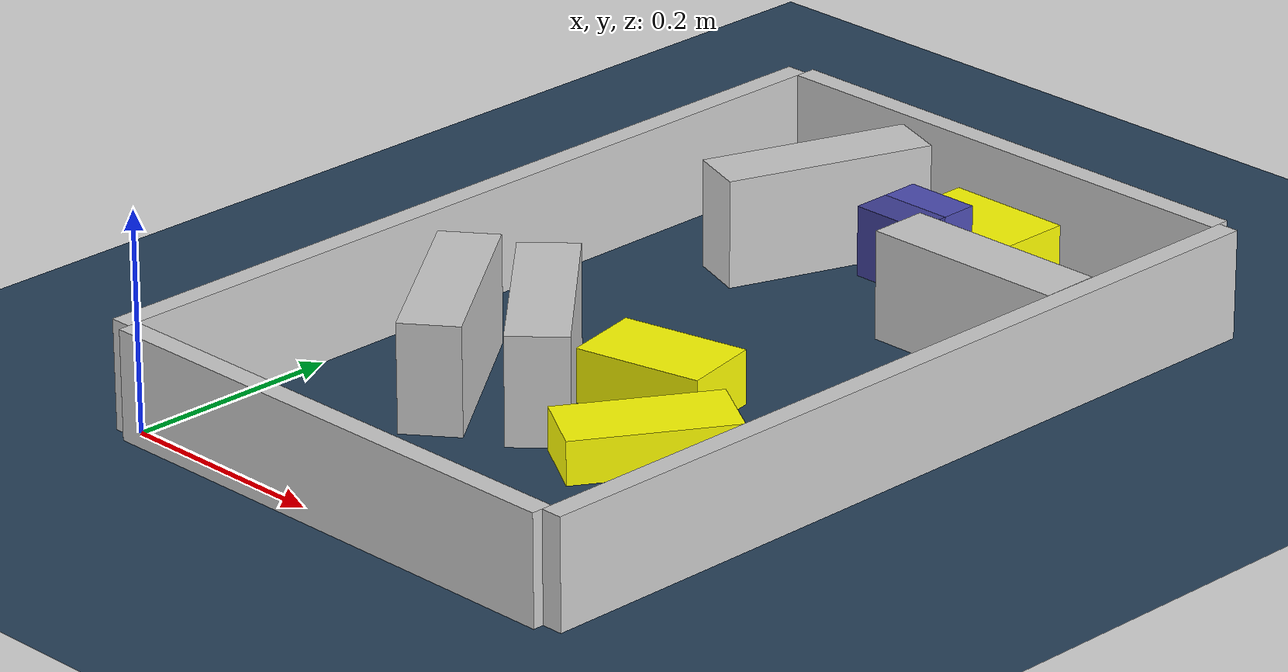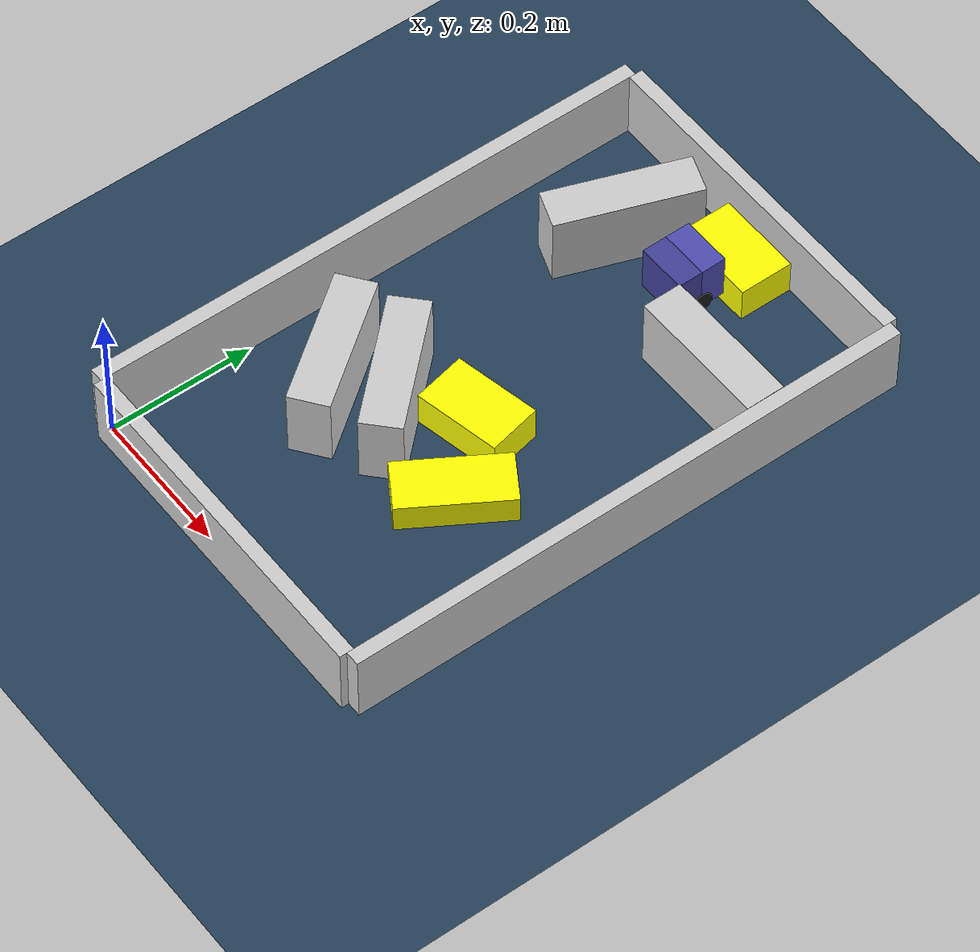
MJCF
<?xml version='1.0' encoding='utf-8'?>
<mujoco model="real_buildable">
  <compiler angle="degree" />
  <option timestep="0.002" integrator="implicitfast" iterations="100" cone="elliptic" />
  <default>
    <geom density="1" />
  </default>
  <asset>
    <texture builtin="gradient" height="3072" rgb1="0.3 0.5 0.7" rgb2="0 0 0" type="skybox" width="512" />
    <texture builtin="checker" height="300" mark="edge" markrgb="0.8 0.8 0.8" name="groundplane" rgb1="0.2 0.3 0.4" rgb2="0.1 0.2 0.3" type="2d" width="300" />
    <material name="groundplane" reflectance="0.2" texrepeat="5 5" texture="groundplane" texuniform="true" />
  </asset>
  <worldbody>
    <light dir="0 0 -1" directional="true" pos="0 0 1.5" />
    <geom name="floor" type="plane" condim="4" friction="0.5 0.005 0.001" material="groundplane" size="0 0 0.05" />
    <body name="walls">
      <geom name="wall_boundary_left" type="box" condim="4" friction="1.0 0.005 0.0001" rgba="0.8 0.8 0.8 1" pos="-0.010000 0.387500 0.050000" euler="0 0 0.000000" size="0.010000 0.397500 0.050000" />
      <geom name="wall_boundary_right" type="box" condim="4" friction="1.0 0.005 0.0001" rgba="0.8 0.8 0.8 1" pos="0.500000 0.387500 0.050000" euler="0 0 0.000000" size="0.010000 0.397500 0.050000" />
      <geom name="wall_boundary_bottom" type="box" condim="4" friction="1.0 0.005 0.0001" rgba="0.8 0.8 0.8 1" pos="0.245000 -0.010000 0.050000" euler="0 0 0.000000" size="0.245000 0.010000 0.050000" />
      <geom name="wall_boundary_top" type="box" condim="4" friction="1.0 0.005 0.0001" rgba="0.8 0.8 0.8 1" pos="0.245000 0.785000 0.050000" euler="0 0 0.000000" size="0.245000 0.010000 0.050000" />
      <geom name="wall_inner_1" type="box" condim="4" friction="1.0 0.005 0.0001" rgba="0.8 0.8 0.8 1" pos="0.184717 0.282959 0.050000" euler="0 0 -46.629142" size="0.097500 0.027500 0.050000" />
      <geom name="wall_inner_2" type="box" condim="4" friction="1.0 0.005 0.0001" rgba="0.8 0.8 0.8 1" pos="0.113388 0.243286 0.050000" euler="0 0 -53.073195" size="0.097500 0.027500 0.050000" />
      <geom name="wall_inner_3" type="box" condim="4" friction="1.0 0.005 0.0001" rgba="0.8 0.8 0.8 1" pos="0.392000 0.596000 0.050000" euler="0 0 0.500000" size="0.097500 0.027500 0.050000" />
      <geom name="wall_inner_4" type="box" condim="4" friction="1.0 0.005 0.0001" rgba="0.8 0.8 0.8 1" pos="0.139000 0.657000 0.050000" euler="0 0 70.200000" size="0.097500 0.027500 0.050000" />
    </body>
    <body name="car" pos="0.24881501365435704 0.6651053807177395 0.01" quat="0.70399338191675154 0 0 0.71020653208585371">
      <freejoint name="car_freejoint" />
      <inertial pos="0 0 0.0375" mass="0.35" diaginertia="0.000266 0.000266 0.000286" />
      <geom name="front_chassis_collision" type="box" pos="0.0175 0 0.0375" size="0.0175 0.035 0.0325" rgba="0.3 0.3 0.7 1" />
      <geom name="rear_chassis_collision" type="box" pos="-0.0175 0 0.0375" size="0.0175 0.035 0.0325" rgba="0.25 0.25 0.6 1" />
      <geom name="front_marker" type="box" pos="0.034 0 0.0505" size="0.002 0.015 0.01" rgba="1 0.2 0.2 1" contype="0" conaffinity="0" />
      <body name="rear_support_body" pos="-0.03 0 0.0025">
        <joint name="rear_caster_joint" type="ball" damping="0.0001" />
        <inertial pos="0 0 0" mass="0.025" diaginertia="0.000001 0.000001 0.000001" />
        <geom name="rear_support" type="sphere" pos="0 0 0" size="0.0025" friction="0 0 0" rgba="0.7 0.1 0.1 1" />
      </body>
      <body name="front_support_body" pos="0.03 0 0.0025">
        <joint name="front_caster_joint" type="ball" damping="0.0001" />
        <inertial pos="0 0 0" mass="0.025" diaginertia="0.000001 0.000001 0.000001" />
        <geom name="front_support" type="sphere" pos="0 0 0" size="0.0025" friction="0 0 0" rgba="0.1 0.7 0.1 1" />
      </body>
      <body name="left_wheel" pos="0 0.0375 0.015">
        <inertial pos="0 0 0" mass="0.05" diaginertia="0.000003 0.000006 0.000003" />
        <joint name="left_wheel_joint" type="hinge" axis="0 1 0" damping="0.01" armature="0.0001" />
        <geom name="left_wheel_collision" type="cylinder" size="0.015 0.0005" euler="90 0 0" rgba="0.1 0.1 0.1 1" />
      </body>
      <body name="right_wheel" pos="0 -0.0375 0.015">
        <inertial pos="0 0 0" mass="0.05" diaginertia="0.000003 0.000006 0.000003" />
        <joint name="right_wheel_joint" type="hinge" axis="0 1 0" damping="0.01" armature="0.0001" />
        <geom name="right_wheel_collision" type="cylinder" size="0.015 0.0005" euler="90 0 0" rgba="0.1 0.1 0.1 1" />
      </body>
    </body>
    <body name="obstacle_0_movable">
      <geom name="obstacle_0_movable" condim="4" pos="0.33053284680781031 0.25960264079812234 0.02" friction="1 0.005 0.0001" rgba="1 1 0 1" size="0.035000 0.075000 0.020000" type="box" mass="0.1" quat="0.27240903849835235 0 0 0.96218153991042832" />
      <joint type="free" />
    </body>
    <body name="obstacle_1_movable">
      <geom name="obstacle_1_movable" condim="4" pos="0.25862375860281034 0.73756811937516897 0.025000000000000001" friction="1 0.005 0.0001" rgba="1 1 0 1" size="0.037500 0.060000 0.025000" type="box" mass="0.1" quat="0.70755635883114709 0 0 -0.7066569175191092" />
      <joint type="free" />
    </body>
    <body name="obstacle_2_movable">
      <geom name="obstacle_2_movable" condim="4" pos="0.2608863342971916 0.34540094589543135 0.025000000000000001" friction="1 0.005 0.0001" rgba="1 1 0 1" size="0.037500 0.060000 0.025000" type="box" mass="0.1" quat="0.62876187695128893 0 0 0.77759790514937233" />
      <joint type="free" />
    </body>
    <site name="goal" type="sphere" pos="0.245000 0.700000 0.0" size="0.02" rgba="1 0 0 0.5" />
  </worldbody>
  <actuator>
    <velocity name="left_wheel_drive" joint="left_wheel_joint" ctrlrange="-25 25" kv="0.75" forcerange="-0.5 0.5" />
    <velocity name="right_wheel_drive" joint="right_wheel_joint" ctrlrange="-25 25" kv="0.75" forcerange="-0.5 0.5" />
  </actuator>
</mujoco>
